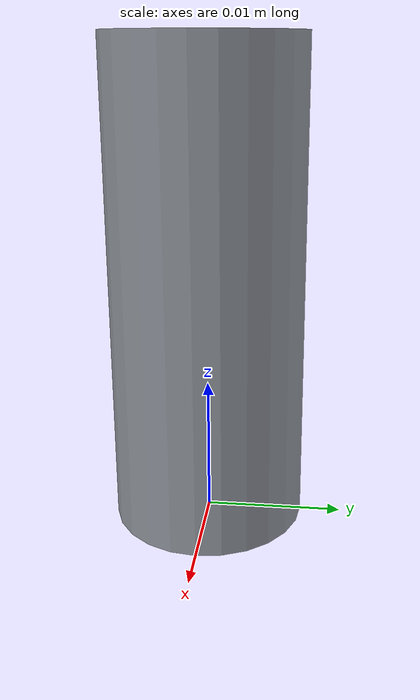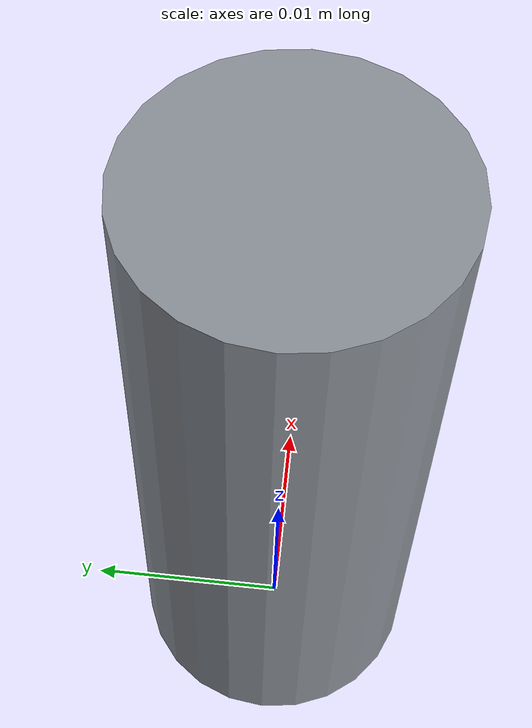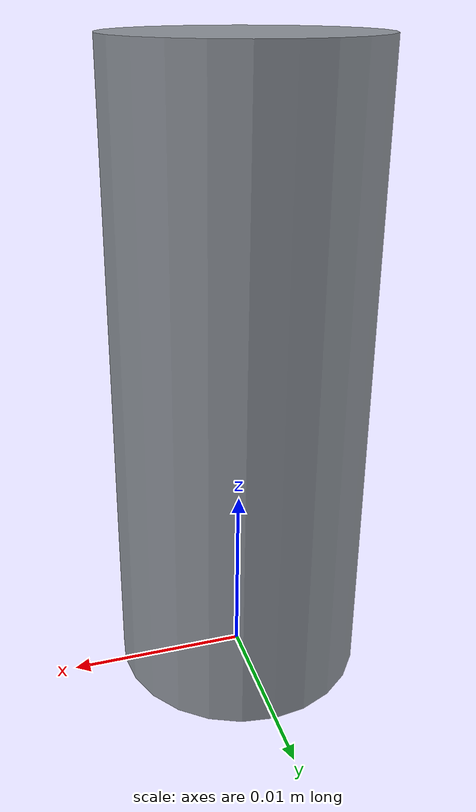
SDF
<?xml version="1.0"?>
<!--
  Spare peg (peghole workcell only): a small static peg, radius 7 mm, 35 mm
  long, shown lying in the parts tray. Spawned twice with different names.
-->
<sdf version="1.9">
  <model name="spare_peg">
    <static>true</static>
    <link name="spare_peg_link">
      <inertial>
        <pose>0 0 0.0175 0 0 0</pose>
        <mass>0.02</mass>
        <inertia>
          <ixx>1e-6</ixx>
          <iyy>1e-6</iyy>
          <izz>1e-6</izz>
          <ixy>0</ixy>
          <ixz>0</ixz>
          <iyz>0</iyz>
        </inertia>
      </inertial>

      <visual name="visual">
        <pose>0 0 0.0175 0 0 0</pose>
        <geometry>
          <cylinder>
            <radius>0.007</radius>
            <length>0.035</length>
          </cylinder>
        </geometry>
        <material>
          <ambient>0.55 0.57 0.60 1.0</ambient>
          <diffuse>0.55 0.57 0.60 1.0</diffuse>
          <specular>0.6 0.6 0.6 1.0</specular>
        </material>
      </visual>
      <collision name="collision">
        <pose>0 0 0.0175 0 0 0</pose>
        <geometry>
          <cylinder>
            <radius>0.007</radius>
            <length>0.035</length>
          </cylinder>
        </geometry>
      </collision>
    </link>
  </model>
</sdf>
